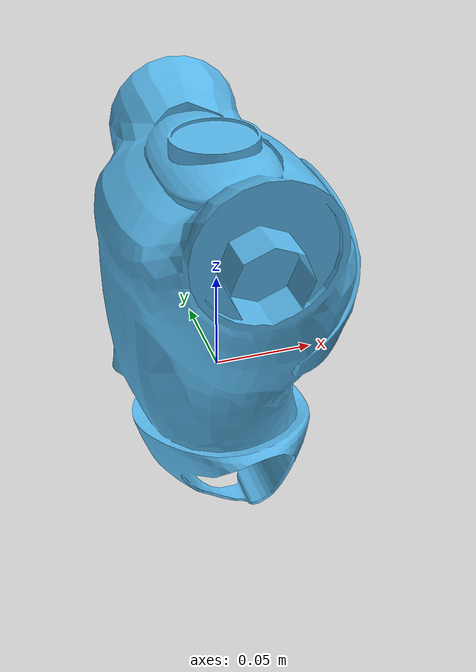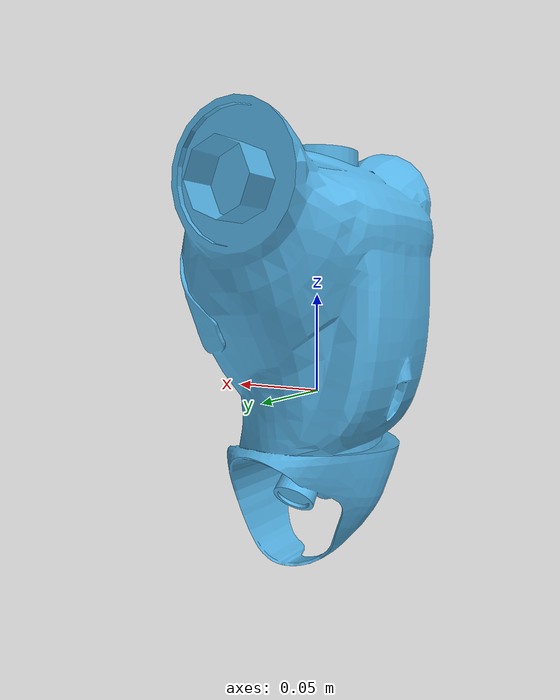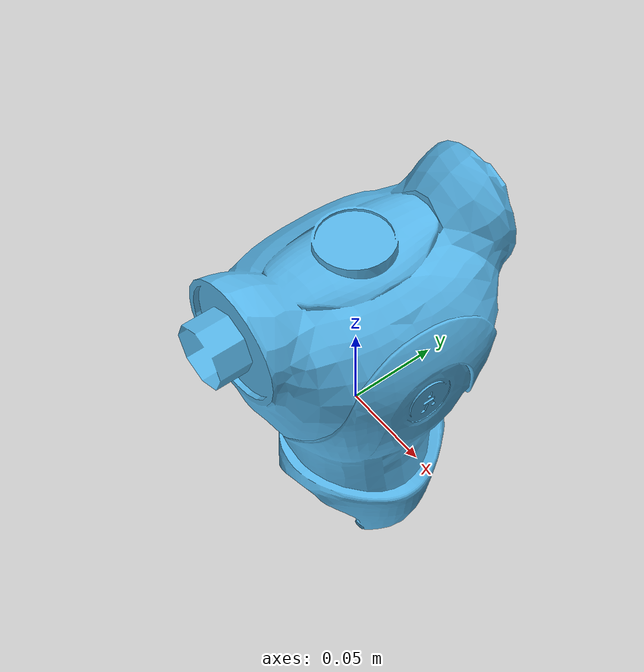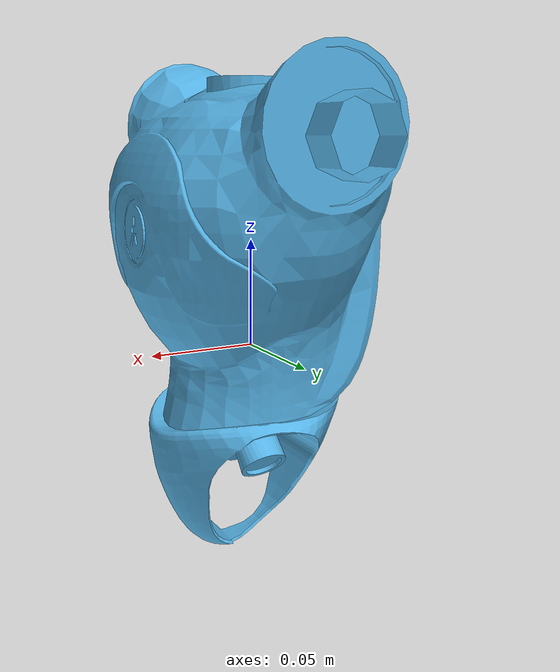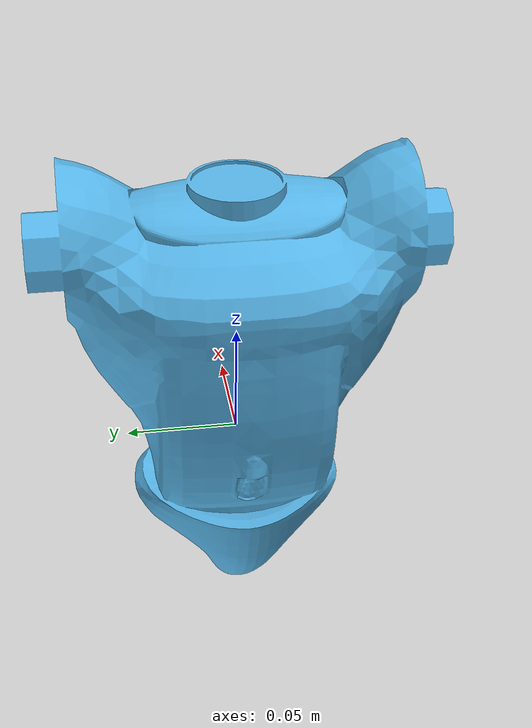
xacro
<?xml version="1.0" ?>
<robot xmlns:xacro="http://www.ros.org/wiki/xacro">
	<link name="base_link"/>
	<joint name="base_joint" type="fixed">
		<parent link="base_link"/>
		<child link="torso"/>
		<origin rpy="0 0 0" xyz="0 0 0"/>
	</joint>
	<link name="torso">
		<visual>
			<geometry>
				<mesh filename="file:///home/marguedas/.ros/nao_meshes/meshes/V40/visual/torso.obj" scale="0.001 0.001 0.001"/>
			</geometry>
		</visual>
		<collision>
			<geometry>
				<mesh filename="file:///home/marguedas/.ros/nao_meshes/meshes/V40/collision/torso.ply" scale="0.001 0.001 0.001"/>
			</geometry>
		</collision>
		<inertial>
			<mass value="1.04956"/>
			<inertia ixx="0.00506234" ixy="1.43116e-05" ixz="0.000155191" iyy="0.00488014" iyz="-2.70793e-05" izz="0.0016103"/>
			<origin rpy="0 0 0" xyz="-0.00413 0 0.04342"/>
		</inertial>
	</link>
</robot>
